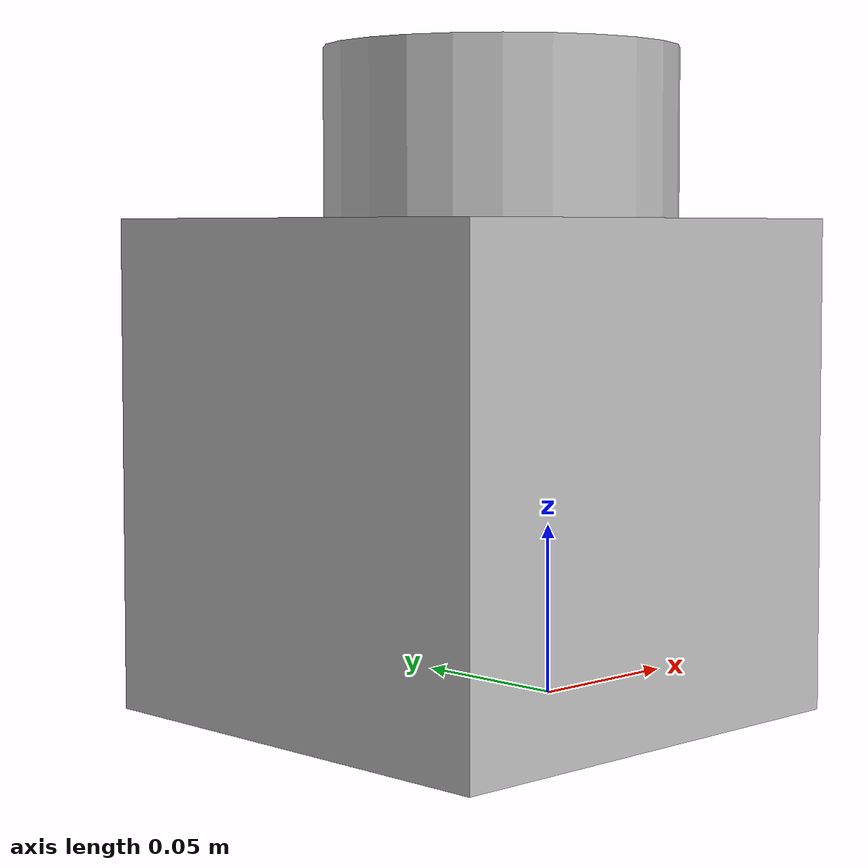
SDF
<?xml version="1.0" ?>
<sdf version="1.5">
  <model name="test_robot">
    <pose>0.0 0.0 0.0 0.0 0.0 0.0</pose>

    <link name="base_footprint"/>

    <link name="base_link">

      <inertial>
        <pose>-0.032 0 0.070 0 0 0</pose>
        <inertia>
          <ixx>7.2397393e-01</ixx>
          <ixy>4.686399e-10</ixy>
          <ixz>-1.09525703e-08</ixz>
          <iyy>7.2397393e-01</iyy>
          <iyz>2.8582649e-09</iyz>
          <izz>6.53050163e-01</izz>
        </inertia>
        <mass>8.2573504e-01</mass>
      </inertial>

      <collision name="base_collision">
        <pose>-0.032 0 0.070 0 0 0</pose>
        <geometry>
          <box>
            <size>0.140 0.140 0.140</size>
          </box>
        </geometry>
      </collision>

      <visual name="base_visual">
        <pose>-0.032 0 0.070 0 0 0</pose>
        <geometry>
          <box>
            <size>0.140 0.140 0.140</size>
          </box>
        </geometry>
      </visual>
    </link>

    <link name="imu_link">
      <sensor name="tb3_imu" type="imu">
        <always_on>true</always_on>
        <update_rate>200</update_rate>
        <imu>
          <angular_velocity>
            <x>
              <noise type="gaussian">
                <mean>0.0</mean>
                <stddev>2e-4</stddev>
              </noise>
            </x>
            <y>
              <noise type="gaussian">
                <mean>0.0</mean>
                <stddev>2e-4</stddev>
              </noise>
            </y>
            <z>
              <noise type="gaussian">
                <mean>0.0</mean>
                <stddev>2e-4</stddev>
              </noise>
            </z>
          </angular_velocity>
          <linear_acceleration>
            <x>
              <noise type="gaussian">
                <mean>0.0</mean>
                <stddev>1.7e-2</stddev>
              </noise>
            </x>
            <y>
              <noise type="gaussian">
                <mean>0.0</mean>
                <stddev>1.7e-2</stddev>
              </noise>
            </y>
            <z>
              <noise type="gaussian">
                <mean>0.0</mean>
                <stddev>1.7e-2</stddev>
              </noise>
            </z>
          </linear_acceleration>
        </imu>
        <plugin name="robot_imu" filename="libgazebo_ros_imu_sensor.so">
          <ros>
            <remapping>~/out:=imu</remapping>
          </ros>
        </plugin>
      </sensor>
    </link>

    <link name="base_scan">
      <inertial>
        <pose>-0.020 0 0.161 0 0 0</pose>
        <inertia>
          <ixx>0.001</ixx>
          <ixy>0.000</ixy>
          <ixz>0.000</ixz>
          <iyy>0.001</iyy>
          <iyz>0.000</iyz>
          <izz>0.001</izz>
        </inertia>
        <mass>0.114</mass>
      </inertial>

      <collision name="lidar_sensor_collision">
        <pose>-0.020 0 0.161 0 0 0</pose>
        <geometry>
          <cylinder>
            <radius>0.0508</radius>
            <length>0.055</length>
          </cylinder>
        </geometry>
      </collision>

      <visual name="lidar_sensor_visual">
        <pose>-0.020 0 0.161 0 0 0</pose>
        <geometry>
          <cylinder>
            <radius>0.0508</radius>
            <length>0.055</length>
          </cylinder>
        </geometry>
      </visual>

      <sensor name="hls_lfcd_lds" type="ray">
        <always_on>true</always_on>
        <visualize>true</visualize>
        <pose>-0.032 0 0.171 0 0 0</pose>
        <update_rate>40</update_rate>
        <ray>
          <scan>
            <horizontal>
              <samples>540</samples>
              <resolution>1.000000</resolution>
              <min_angle>-2.35619</min_angle>
              <max_angle>2.35619</max_angle>
            </horizontal>
          </scan>
          <range>
            <min>0.1</min>
            <max>30.0</max>
            <resolution>0.01</resolution>
          </range>
          <noise>
            <type>gaussian</type>
            <mean>0.0</mean>
            <stddev>0.001</stddev>
          </noise>
        </ray>
        <plugin name="robot_laserscan" filename="libgazebo_ros_ray_sensor.so">
          <ros>
            <remapping>~/out:=scan</remapping>
          </ros>
          <output_type>sensor_msgs/LaserScan</output_type>
          <frame_name>base_scan</frame_name>
        </plugin>
      </sensor>
    </link>

    <joint name="base_joint" type="fixed">
      <parent>base_footprint</parent>
      <child>base_link</child>
      <pose>0.0 0.0 0.010 0 0 0</pose>
    </joint>

    <joint name="imu_joint" type="fixed">
      <parent>base_link</parent>
      <child>imu_link</child>
      <pose>-0.032 0 0.068 0 0 0</pose>
      <axis>
        <xyz>0 0 1</xyz>
      </axis>
    </joint>

    <joint name="lidar_joint" type="fixed">
      <parent>base_link</parent>
      <child>base_scan</child>
      <pose>-0.032 0 0.171 0 0 0</pose>
      <axis>
        <xyz>0 0 1</xyz>
      </axis>
    </joint>

    <plugin name="planar_move" filename="libgazebo_ros_planar_move.so">

        <ros>
          <namespace>/</namespace>
          <remapping>cmd_vel:=cmd_vel</remapping>
          <remapping>odom:=odom</remapping>
        </ros>

        <update_rate>1</update_rate>
        <publish_rate>1</publish_rate>

        <odometry_frame>odom</odometry_frame>
        <robot_base_frame>base_footprint</robot_base_frame>

        <!-- output -->
        <publish_odom>false</publish_odom>
        <publish_odom_tf>false</publish_odom_tf>

    </plugin>

  </model>
</sdf>
